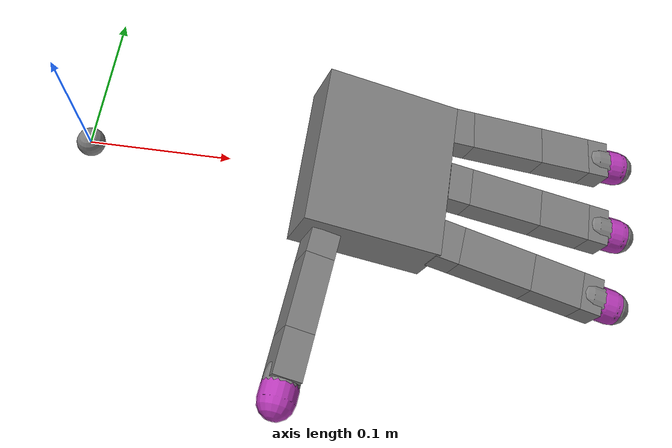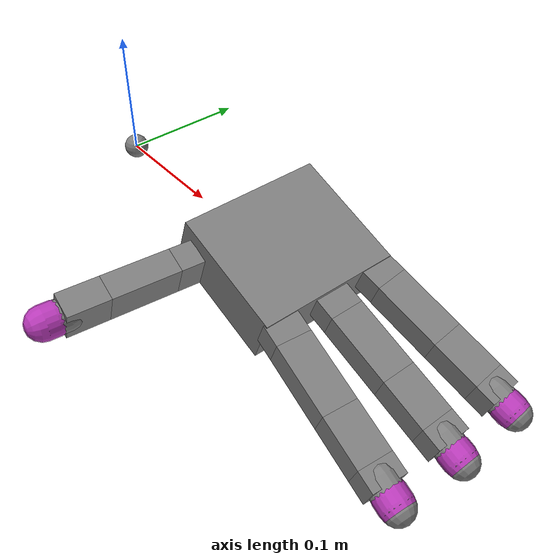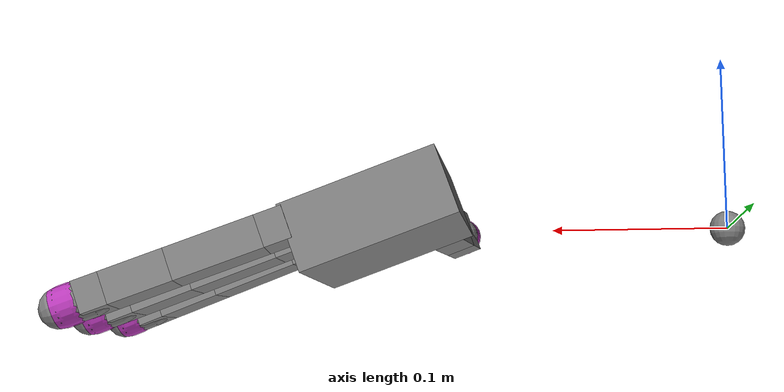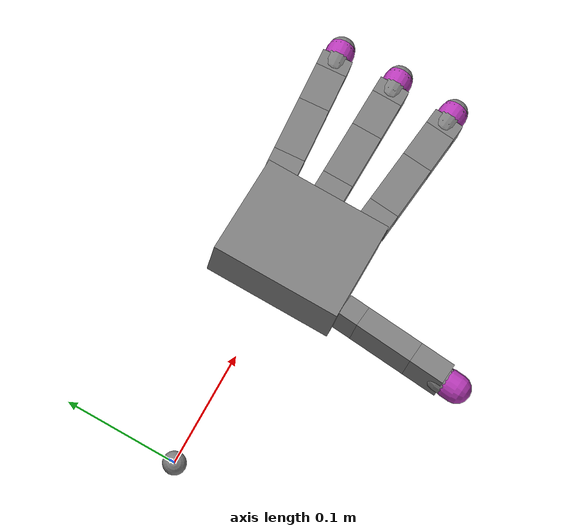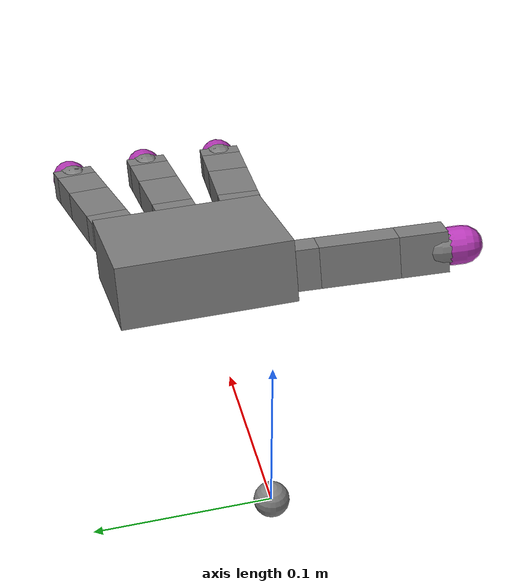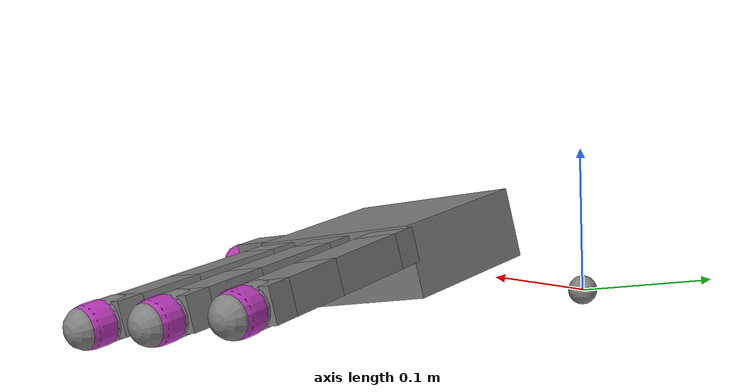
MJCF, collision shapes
<mujoco model="allegro_right">
  <compiler angle="radian" meshdir="assets" autolimits="true"/>

  <option cone="elliptic" impratio="10"/>

  <default>
    <default class="allegro_right">
      <joint axis="0 1 0" damping=".1"/>
      <position kp="0.5"/>
      <geom density="800"/>

      <default class="visual">
        <geom type="mesh" contype="0" conaffinity="0" group="2" material="black"/>
        <default class="palm_visual">
          <geom mesh="base_link"/>
        </default>
        <default class="base_visual">
          <geom mesh="link_0.0"/>
        </default>
        <default class="proximal_visual">
          <geom mesh="link_1.0"/>
        </default>
        <default class="medial_visual">
          <geom mesh="link_2.0"/>
        </default>
        <default class="distal_visual">
          <geom mesh="link_3.0"/>
        </default>
        <default class="fingertip_visual">
          <geom pos="0 0 0.0267" material="white" mesh="link_3.0_tip"/>
        </default>
        <default class="thumbtip_visual">
          <geom pos="0 0 0.0423" material="white" mesh="link_15.0_tip"/>
        </default>
      </default>

      <default class="collision">
        <geom group="3" type="box" mass="0"/>
        <default class="palm_collision">
          <geom size="0.0204 0.0565 0.0475" pos="-0.0093 0 -0.0475"/>
        </default>
        <default class="base_collision">
          <geom size="0.0098 0.01375 0.0082" pos="0 0 0.0082"/>
          <default class="thumb_base_collision">
            <geom size="0.0179 0.017 0.02275" pos="-0.0179 0.009 0.0145"/>
          </default>
        </default>
        <default class="proximal_collision">
          <geom size="0.0098 0.01375 0.027" pos="0 0 0.027"/>
          <default class="thumb_proximal_collision">
            <geom size="0.0098 0.01375 0.00885" pos="0 0 0.00885"/>
          </default>
        </default>
        <default class="medial_collision">
          <geom size="0.0098 0.01375 0.0192" pos="0 0 0.0192"/>
          <default class="thumb_medial_collision">
            <geom size="0.0098 0.01375 0.0257" pos="0 0 0.0257"/>
          </default>
        </default>
        <default class="distal_collision">
          <geom size="0.0098 0.01375 0.008" pos="0 0 0.008"/>
          <default class="thumb_distal_collision">
            <geom size="0.0098 0.01375 0.0157" pos="0 0 0.0157"/>
          </default>
        </default>
        <default class="fingertip_collision">
          <geom type="capsule" size="0.012 0.01" pos="0 0 0.019"/>
          <default class="thumbtip_collision">
            <geom type="capsule" size="0.012 0.008" pos="0 0 0.035"/>
          </default>
        </default>
      </default>

      <default class="base">
        <joint axis="0 0 1" range="-0.47 0.47"/>
        <position ctrlrange="-0.47 0.47"/>
      </default>
      <default class="proximal">
        <joint range="-0.196 1.61"/>
        <position ctrlrange="-0.196 1.61"/>
      </default>
      <default class="medial">
        <joint range="-0.174 1.709"/>
        <position ctrlrange="-0.174 1.709"/>
      </default>
      <default class="distal">
        <joint range="-0.227 1.618"/>
        <position ctrlrange="-0.227 1.618"/>
      </default>
      <default class="thumb_base">
        <joint axis="-1 0 0" range="0.263 1.396"/>
        <position ctrlrange="0.263 1.396"/>
      </default>
      <default class="thumb_proximal">
        <joint axis="0 0 1" range="-0.105 1.163"/>
        <position ctrlrange="-0.105 1.163"/>
      </default>
      <default class="thumb_medial">
        <joint range="-0.189 1.644"/>
        <position ctrlrange="-0.189 1.644"/>
      </default>
      <default class="thumb_distal">
        <joint range="-0.162 1.719"/>
        <position ctrlrange="-0.162 1.719"/>
      </default>
    </default>
  </default>

  <asset>
    <material name="black" rgba="0.2 0.2 0.2 1"/>
    <material name="white" rgba="0.9 0.9 0.9 1"/>

    <mesh file="base_link.stl"/>
    <mesh file="link_0.0.stl"/>
    <mesh file="link_1.0.stl"/>
    <mesh file="link_2.0.stl"/>
    <mesh file="link_3.0.stl"/>
    <mesh file="link_3.0_tip.stl"/>
    <mesh file="link_12.0_right.stl"/>
    <mesh file="link_13.0.stl"/>
    <mesh file="link_14.0.stl"/>
    <mesh file="link_15.0.stl"/>
    <mesh file="link_15.0_tip.stl"/>
  </asset>

  <worldbody>
    <body name="palm" pos="0.25 0 0" quat="0 1 0 0.7" childclass="allegro_right">
      <site name="grasp_site" pos="0.0 0.0 0.0" group="4"/>
      <geom class="palm_visual" mesh="base_link"/>
      <geom class="palm_collision"/>
      <!-- First finger -->
      <body name="ff_base" pos="0 0.0435 -0.001542" quat="0.999048 -0.0436194 0 0">
        <joint name="ffj0" class="base"/>
        <geom class="base_visual"/>
        <geom class="base_collision"/>
        <body name="ff_proximal" pos="0 0 0.0164">
          <joint name="ffj1" class="proximal"/>
          <geom class="proximal_visual"/>
          <geom class="proximal_collision"/>
          <body name="ff_medial" pos="0 0 0.054">
            <joint name="ffj2" class="medial"/>
            <geom class="medial_visual"/>
            <geom class="medial_collision"/>
            <body name="ff_distal" pos="0 0 0.0384">
              <joint name="ffj3" class="distal"/>
              <geom class="distal_visual"/>
              <geom class="distal_collision"/>
              <body name="ff_tip">
                <site name="ff_tip" type="capsule" size="0.0125 0.0125 0" fromto="0 0 0.02 0 0 0.027" rgba="1 0 1 0.5"/>
                <geom class="fingertip_visual"/>
                <geom class="fingertip_collision"/>
                <site name="tip" pos="0 0 0"/>
              </body>
            </body>
          </body>
        </body>
      </body>
      <!-- Middle finger -->
      <body name="mf_base" pos="0 0 0.0007">
        <joint name="mfj0" class="base"/>
        <geom class="base_visual"/>
        <geom class="base_collision"/>
        <body name="mf_proximal" pos="0 0 0.0164">
          <joint name="mfj1" class="proximal"/>
          <geom class="proximal_visual"/>
          <geom class="proximal_collision"/>
          <body name="mf_medial" pos="0 0 0.054">
            <joint name="mfj2" class="medial"/>
            <geom class="medial_visual"/>
            <geom class="medial_collision"/>
            <body name="mf_distal" pos="0 0 0.0384">
              <joint name="mfj3" class="distal"/>
              <geom class="distal_visual"/>
              <geom class="distal_collision"/>
              <body name="mf_tip">
                <site name="mf_tip" type="capsule" size="0.0125 0.0125 0" fromto="0 0 0.02 0 0 0.027" rgba="1 0 1 0.5"/>
                <geom class="fingertip_visual"/>
                <geom class="fingertip_collision"/>
              </body>
            </body>
          </body>
        </body>
      </body>
      <!-- Ring finger -->
      <body name="rf_base" pos="0 -0.0435 -0.001542" quat="0.999048 0.0436194 0 0">
        <joint name="rfj0" class="base"/>
        <geom class="base_visual"/>
        <geom class="base_collision"/>
        <body name="rf_proximal" pos="0 0 0.0164">
          <joint name="rfj1" class="proximal"/>
          <geom class="proximal_visual"/>
          <geom class="proximal_collision"/>
          <body name="rf_medial" pos="0 0 0.054">
            <joint name="rfj2" class="medial"/>
            <geom class="medial_visual"/>
            <geom class="medial_collision"/>
            <body name="rf_distal" pos="0 0 0.0384">
              <joint name="rfj3" class="distal"/>
              <geom class="distal_visual"/>
              <geom class="distal_collision"/>
              <body name="rf_tip">
                <site name="rf_tip" type="capsule" size="0.0125 0.0125 0" fromto="0 0 0.02 0 0 0.027" rgba="1 0 1 0.5"/>
                <geom class="fingertip_visual"/>
                <geom class="fingertip_collision"/>
              </body>
            </body>
          </body>
        </body>
      </body>
      <!-- Thumb -->
      <body name="th_base" pos="-0.0182 0.019333 -0.045987" quat="0.477714 -0.521334 -0.521334 -0.477714">
        <joint name="thj0" class="thumb_base"/>
        <geom class="visual" mesh="link_12.0_right"/>
        <geom class="thumb_base_collision"/>
        <body name="th_proximal" pos="-0.027 0.005 0.0399">
          <joint name="thj1" class="thumb_proximal"/>
          <geom class="visual" mesh="link_13.0"/>
          <geom class="thumb_proximal_collision"/>
          <body name="th_medial" pos="0 0 0.0177">
            <joint name="thj2" class="thumb_medial"/>
            <geom class="visual" mesh="link_14.0"/>
            <geom class="thumb_medial_collision"/>
            <body name="th_distal" pos="0 0 0.0514">
              <joint name="thj3" class="thumb_distal"/>
              <geom class="visual" mesh="link_15.0"/>
              <geom class="thumb_distal_collision"/>
              <body name="th_tip">
                <site name="th_tip" type="capsule" size="0.0125 0.0125 0" fromto="0 0 0.035 0 0 0.043" rgba="1 0 1 0.5"/>
                <geom class="thumbtip_visual"/>
                <geom class="thumbtip_collision"/>
              </body>
            </body>
          </body>
        </body>
      </body>
    </body>

    <!-- finger-tips mocaps -->
    <body name="th_tip_mocap" mocap="true">
      <geom type="sphere" size="0.01"/>
    </body>
    <body name="ff_tip_mocap" mocap="true">
      <geom type="sphere" size="0.01"/>
    </body>
    <body name="mf_tip_mocap" mocap="true">
      <geom type="sphere" size="0.01"/>
    </body>
    <body name="rf_tip_mocap" mocap="true">
      <geom type="sphere" size="0.01"/>
    </body>
  </worldbody>

  <contact>
    <exclude body1="palm" body2="ff_base"/>
    <exclude body1="palm" body2="mf_base"/>
    <exclude body1="palm" body2="rf_base"/>
    <exclude body1="palm" body2="th_base"/>
    <exclude body1="palm" body2="th_proximal"/>
    <exclude body1="palm" body2="th_proximal"/>

    <exclude body1="rf_distal" body2="rf_tip"/>
    <exclude body1="mf_distal" body2="mf_tip"/>
    <exclude body1="ff_distal" body2="ff_tip"/>
    <exclude body1="th_distal" body2="th_tip"/>

    <exclude body1="ff_tip_mocap" body2="ff_tip"/>
    <exclude body1="mf_tip_mocap" body2="mf_tip"/>
    <exclude body1="rf_tip_mocap" body2="rf_tip"/>
    <exclude body1="th_tip_mocap" body2="th_tip"/>
  </contact>

  <actuator>
    <position name="ffa0" joint="ffj0" class="base"/>
    <position name="ffa1" joint="ffj1" class="proximal"/>
    <position name="ffa2" joint="ffj2" class="medial"/>
    <position name="ffa3" joint="ffj3" class="distal"/>
    <position name="mfa0" joint="mfj0" class="base"/>
    <position name="mfa1" joint="mfj1" class="proximal"/>
    <position name="mfa2" joint="mfj2" class="medial"/>
    <position name="mfa3" joint="mfj3" class="distal"/>
    <position name="rfa0" joint="rfj0" class="base"/>
    <position name="rfa1" joint="rfj1" class="proximal"/>
    <position name="rfa2" joint="rfj2" class="medial"/>
    <position name="rfa3" joint="rfj3" class="distal"/>
    <position name="tha0" joint="thj0" class="thumb_base"/>
    <position name="tha1" joint="thj1" class="thumb_proximal"/>
    <position name="tha2" joint="thj2" class="thumb_medial"/>
    <position name="tha3" joint="thj3" class="thumb_distal"/>
  </actuator>

  <!-- Traces for visualizing rollouts -->
  <sensor>
    <touch name="S_rf_tip" site="rf_tip"/>
    <touch name="S_mf_tip" site="mf_tip"/>
    <touch name="S_ff_tip" site="ff_tip"/>
    <touch name="S_th_tip" site="th_tip"/>

    <force name="Sf_rf_tip" site="rf_tip"/>
    <force name="Sf_mf_tip" site="mf_tip"/>
    <force name="Sf_ff_tip" site="ff_tip"/>
    <force name="Sf_th_tip" site="th_tip"/>

    <framepos name="trace1" objtype="body" objname="rf_tip"/>
    <framepos name="trace2" objtype="body" objname="ff_tip"/>
    <framepos name="trace3" objtype="body" objname="mf_tip"/>
    <framepos name="trace4" objtype="body" objname="th_tip"/>
  </sensor>
</mujoco>
